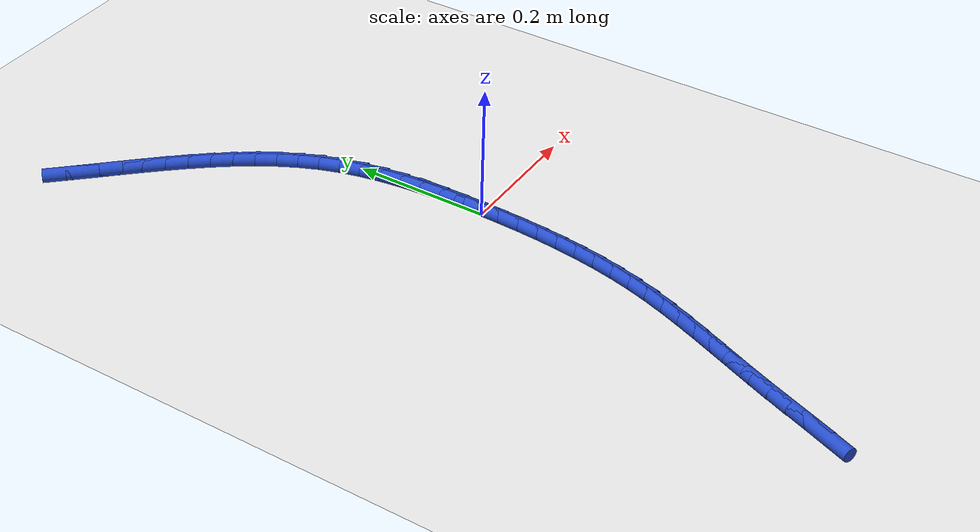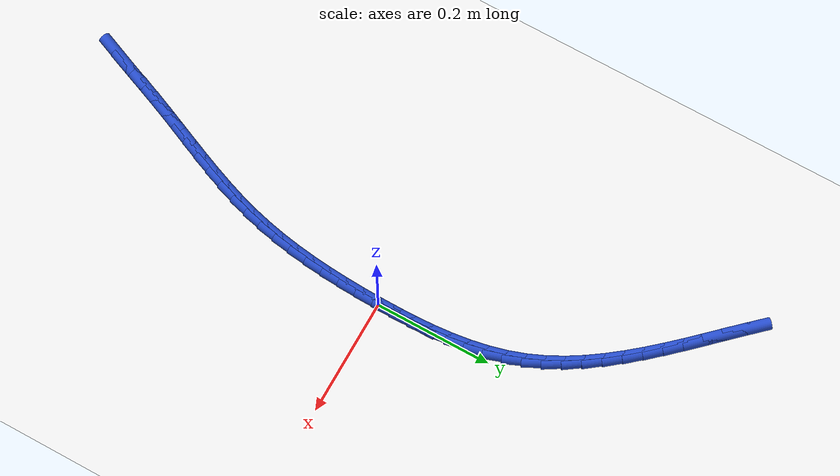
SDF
<sdf version="1.6">
 <world name="default">
  <model name="ground_plane">
   <static>1</static>
   <link name="link">
    <collision name="collision">
     <geometry><plane><normal>0 0 1</normal><size>100 100</size></plane></geometry>
     <surface><friction><ode><mu>100</mu><mu2>50</mu2></ode></friction></surface>
    </collision>
    <visual name="visual">
     <cast_shadows>0</cast_shadows>
     <geometry><plane><normal>0 0 1</normal><size>100 100</size></plane></geometry>
     <material>
      <script><uri>file://media/materials/scripts/gazebo.material</uri><name>Gazebo/WhiteGlow</name></script>
     </material>
    </visual>
   </link>
  </model>
  <model name="line">
   <link name="link_0">
    <pose>1.951563910473908e-18 -4.85722573273506e-17 0.01 0 1.57 1.5601422020148101</pose>
    <collision name="collision">
     <geometry><cylinder><radius>0.01</radius><length>0.08</length></cylinder></geometry>
    </collision>
    <visual name="visual">
     <material>
      <script><name>Gazebo/Blue</name><uri>file://media/materials/scripts/gazebo.material</uri></script>
     </material>
     <geometry><cylinder><radius>0.01</radius><length>0.08</length></cylinder></geometry>
    </visual>
   </link>
   <link name="link_1">
    <pose>0.0003457075524983117 0.032447007996455744 0.01 0 1.57 -1.557407941470897</pose>
    <collision name="collision">
     <geometry><cylinder><radius>0.01</radius><length>0.08</length></cylinder></geometry>
    </collision>
    <visual name="visual">
     <material>
      <script><name>Gazebo/Blue</name><uri>file://media/materials/scripts/gazebo.material</uri></script>
     </material>
     <geometry><cylinder><radius>0.01</radius><length>0.08</length></cylinder></geometry>
    </visual>
   </link>
   <link name="link_2">
    <pose>-8.86119410091231e-05 0.06488509012977318 0.01 0 1.57 -1.5258298096238987</pose>
    <collision name="collision">
     <geometry><cylinder><radius>0.01</radius><length>0.08</length></cylinder></geometry>
    </collision>
    <visual name="visual">
     <material>
      <script><name>Gazebo/Blue</name><uri>file://media/materials/scripts/gazebo.material</uri></script>
     </material>
     <geometry><cylinder><radius>0.01</radius><length>0.08</length></cylinder></geometry>
    </visual>
   </link>
   <link name="link_3">
    <pose>-0.0015413717403349356 0.09717090198525248 0.01 0 1.57 -1.486296652616927</pose>
    <collision name="collision">
     <geometry><cylinder><radius>0.01</radius><length>0.08</length></cylinder></geometry>
    </collision>
    <visual name="visual">
     <material>
      <script><name>Gazebo/Blue</name><uri>file://media/materials/scripts/gazebo.material</uri></script>
     </material>
     <geometry><cylinder><radius>0.01</radius><length>0.08</length></cylinder></geometry>
    </visual>
   </link>
   <link name="link_4">
    <pose>-0.004250985105291752 0.12916109914819376 0.01 0 1.57 -1.4383055679510994</pose>
    <collision name="collision">
     <geometry><cylinder><radius>0.01</radius><length>0.08</length></cylinder></geometry>
    </collision>
    <visual name="visual">
     <material>
      <script><name>Gazebo/Blue</name><uri>file://media/materials/scripts/gazebo.material</uri></script>
     </material>
     <geometry><cylinder><radius>0.01</radius><length>0.08</length></cylinder></geometry>
    </visual>
   </link>
   <link name="link_5">
    <pose>-0.008455865295692207 0.16071233720389716 0.01 0 1.57 -1.381337579361241</pose>
    <collision name="collision">
     <geometry><cylinder><radius>0.01</radius><length>0.08</length></cylinder></geometry>
    </collision>
    <visual name="visual">
     <material>
      <script><name>Gazebo/Blue</name><uri>file://media/materials/scripts/gazebo.material</uri></script>
     </material>
     <geometry><cylinder><radius>0.01</radius><length>0.08</length></cylinder></geometry>
    </visual>
   </link>
   <link name="link_6">
    <pose>-0.014394425571348925 0.19168127173766283 0.01 0 1.57 -1.3149608072979624</pose>
    <collision name="collision">
     <geometry><cylinder><radius>0.01</radius><length>0.08</length></cylinder></geometry>
    </collision>
    <visual name="visual">
     <material>
      <script><name>Gazebo/Blue</name><uri>file://media/materials/scripts/gazebo.material</uri></script>
     </material>
     <geometry><cylinder><radius>0.01</radius><length>0.08</length></cylinder></geometry>
    </visual>
   </link>
   <link name="link_7">
    <pose>-0.02230507919207454 0.221924558334791 0.01 0 1.57 -1.2389795612155956</pose>
    <collision name="collision">
     <geometry><cylinder><radius>0.01</radius><length>0.08</length></cylinder></geometry>
    </collision>
    <visual name="visual">
     <material>
      <script><name>Gazebo/Blue</name><uri>file://media/materials/scripts/gazebo.material</uri></script>
     </material>
     <geometry><cylinder><radius>0.01</radius><length>0.08</length></cylinder></geometry>
    </visual>
   </link>
   <link name="link_8">
    <pose>-0.0324261800472538 0.2512988819237568 0.01 0 1.57 -1.157377749378496</pose>
    <collision name="collision">
     <geometry><cylinder><radius>0.01</radius><length>0.08</length></cylinder></geometry>
    </collision>
    <visual name="visual">
     <material>
      <script><name>Gazebo/Blue</name><uri>file://media/materials/scripts/gazebo.material</uri></script>
     </material>
     <geometry><cylinder><radius>0.01</radius><length>0.08</length></cylinder></geometry>
    </visual>
   </link>
   <link name="link_9">
    <pose>-0.04489136149666769 0.2797126843925873 0.01 0 1.57 -1.0823882750565061</pose>
    <collision name="collision">
     <geometry><cylinder><radius>0.01</radius><length>0.08</length></cylinder></geometry>
    </collision>
    <visual name="visual">
     <material>
      <script><name>Gazebo/Blue</name><uri>file://media/materials/scripts/gazebo.material</uri></script>
     </material>
     <geometry><cylinder><radius>0.01</radius><length>0.08</length></cylinder></geometry>
    </visual>
   </link>
   <link name="link_10">
    <pose>-0.05951398409438635 0.30723269890909444 0.01 0 1.57 -1.0167722121956417</pose>
    <collision name="collision">
     <geometry><cylinder><radius>0.01</radius><length>0.08</length></cylinder></geometry>
    </collision>
    <visual name="visual">
     <material>
      <script><name>Gazebo/Blue</name><uri>file://media/materials/scripts/gazebo.material</uri></script>
     </material>
     <geometry><cylinder><radius>0.01</radius><length>0.08</length></cylinder></geometry>
    </visual>
   </link>
   <link name="link_11">
    <pose>-0.07604639247050443 0.33395581508435057 0.01 0 1.57 -0.9606285880004451</pose>
    <collision name="collision">
     <geometry><cylinder><radius>0.01</radius><length>0.08</length></cylinder></geometry>
    </collision>
    <visual name="visual">
     <material>
      <script><name>Gazebo/Blue</name><uri>file://media/materials/scripts/gazebo.material</uri></script>
     </material>
     <geometry><cylinder><radius>0.01</radius><length>0.08</length></cylinder></geometry>
    </visual>
   </link>
   <link name="link_12">
    <pose>-0.09424093125511661 0.3599789225294286 0.01 0 1.57 -0.913738444325812</pose>
    <collision name="collision">
     <geometry><cylinder><radius>0.01</radius><length>0.08</length></cylinder></geometry>
    </collision>
    <visual name="visual">
     <material>
      <script><name>Gazebo/Blue</name><uri>file://media/materials/scripts/gazebo.material</uri></script>
     </material>
     <geometry><cylinder><radius>0.01</radius><length>0.08</length></cylinder></geometry>
    </visual>
   </link>
   <link name="link_13">
    <pose>-0.11384994507831754 0.38539891085540084 0.01 0 1.57 -0.8757177984947657</pose>
    <collision name="collision">
     <geometry><cylinder><radius>0.01</radius><length>0.08</length></cylinder></geometry>
    </collision>
    <visual name="visual">
     <material>
      <script><name>Gazebo/Blue</name><uri>file://media/materials/scripts/gazebo.material</uri></script>
     </material>
     <geometry><cylinder><radius>0.01</radius><length>0.08</length></cylinder></geometry>
    </visual>
   </link>
   <link name="link_14">
    <pose>-0.1346257785702018 0.41031266967334 0.01 0 1.57 -0.8461341198908823</pose>
    <collision name="collision">
     <geometry><cylinder><radius>0.01</radius><length>0.08</length></cylinder></geometry>
    </collision>
    <visual name="visual">
     <material>
      <script><name>Gazebo/Blue</name><uri>file://media/materials/scripts/gazebo.material</uri></script>
     </material>
     <geometry><cylinder><radius>0.01</radius><length>0.08</length></cylinder></geometry>
    </visual>
   </link>
   <link name="link_15">
    <pose>-0.15632077636086408 0.43481708859431834 0.01 0 1.57 -0.8245860310999504</pose>
    <collision name="collision">
     <geometry><cylinder><radius>0.01</radius><length>0.08</length></cylinder></geometry>
    </collision>
    <visual name="visual">
     <material>
      <script><name>Gazebo/Blue</name><uri>file://media/materials/scripts/gazebo.material</uri></script>
     </material>
     <geometry><cylinder><radius>0.01</radius><length>0.08</length></cylinder></geometry>
    </visual>
   </link>
   <link name="link_16">
    <pose>-0.17868728308039913 0.4590090572294087 0.01 0 1.57 -0.8107536357878705</pose>
    <collision name="collision">
     <geometry><cylinder><radius>0.01</radius><length>0.08</length></cylinder></geometry>
    </collision>
    <visual name="visual">
     <material>
      <script><name>Gazebo/Blue</name><uri>file://media/materials/scripts/gazebo.material</uri></script>
     </material>
     <geometry><cylinder><radius>0.01</radius><length>0.08</length></cylinder></geometry>
    </visual>
   </link>
   <link name="link_17">
    <pose>-0.20147764335890142 0.4829854651896833 0.01 0 1.57 -0.8044282596533969</pose>
    <collision name="collision">
     <geometry><cylinder><radius>0.01</radius><length>0.08</length></cylinder></geometry>
    </collision>
    <visual name="visual">
     <material>
      <script><name>Gazebo/Blue</name><uri>file://media/materials/scripts/gazebo.material</uri></script>
     </material>
     <geometry><cylinder><radius>0.01</radius><length>0.08</length></cylinder></geometry>
    </visual>
   </link>
   <link name="link_18">
    <pose>-0.22444420182646577 0.5068432020862151 0.01 0 1.57 -0.8055288244147857</pose>
    <collision name="collision">
     <geometry><cylinder><radius>0.01</radius><length>0.08</length></cylinder></geometry>
    </collision>
    <visual name="visual">
     <material>
      <script><name>Gazebo/Blue</name><uri>file://media/materials/scripts/gazebo.material</uri></script>
     </material>
     <geometry><cylinder><radius>0.01</radius><length>0.08</length></cylinder></geometry>
    </visual>
   </link>
   <link name="link_19">
    <pose>-0.24733930311318658 0.5306791575300762 0.01 0 1.57 -0.8141095556093366</pose>
    <collision name="collision">
     <geometry><cylinder><radius>0.01</radius><length>0.08</length></cylinder></geometry>
    </collision>
    <visual name="visual">
     <material>
      <script><name>Gazebo/Blue</name><uri>file://media/materials/scripts/gazebo.material</uri></script>
     </material>
     <geometry><cylinder><radius>0.01</radius><length>0.08</length></cylinder></geometry>
    </visual>
   </link>
   <link name="link_231">
    <pose>-0.16286225556470377 -0.5783200771897631 0.01 0 1.57 1.1784569628600592</pose>
    <collision name="collision">
     <geometry><cylinder><radius>0.01</radius><length>0.08</length></cylinder></geometry>
    </collision>
    <visual name="visual">
     <material>
      <script><name>Gazebo/Blue</name><uri>file://media/materials/scripts/gazebo.material</uri></script>
     </material>
     <geometry><cylinder><radius>0.01</radius><length>0.08</length></cylinder></geometry>
    </visual>
   </link>
   <link name="link_232">
    <pose>-0.15033522292304197 -0.548046348111298 0.01 0 1.57 1.190196052197276</pose>
    <collision name="collision">
     <geometry><cylinder><radius>0.01</radius><length>0.08</length></cylinder></geometry>
    </collision>
    <visual name="visual">
     <material>
      <script><name>Gazebo/Blue</name><uri>file://media/materials/scripts/gazebo.material</uri></script>
     </material>
     <geometry><cylinder><radius>0.01</radius><length>0.08</length></cylinder></geometry>
    </visual>
   </link>
   <link name="link_233">
    <pose>-0.1381395776700763 -0.5175655352985078 0.01 0 1.57 1.18841678270736</pose>
    <collision name="collision">
     <geometry><cylinder><radius>0.01</radius><length>0.08</length></cylinder></geometry>
    </collision>
    <visual name="visual">
     <material>
      <script><name>Gazebo/Blue</name><uri>file://media/materials/scripts/gazebo.material</uri></script>
     </material>
     <geometry><cylinder><radius>0.01</radius><length>0.08</length></cylinder></geometry>
    </visual>
   </link>
   <link name="link_234">
    <pose>-0.12592494934510598 -0.4871940717737369 0.01 0 1.57 1.1749783767247737</pose>
    <collision name="collision">
     <geometry><cylinder><radius>0.01</radius><length>0.08</length></cylinder></geometry>
    </collision>
    <visual name="visual">
     <material>
      <script><name>Gazebo/Blue</name><uri>file://media/materials/scripts/gazebo.material</uri></script>
     </material>
     <geometry><cylinder><radius>0.01</radius><length>0.08</length></cylinder></geometry>
    </visual>
   </link>
   <link name="link_235">
    <pose>-0.11339476183056156 -0.45720838466049996 0.01 0 1.57 1.1635456268459354</pose>
    <collision name="collision">
     <geometry><cylinder><radius>0.01</radius><length>0.08</length></cylinder></geometry>
    </collision>
    <visual name="visual">
     <material>
      <script><name>Gazebo/Blue</name><uri>file://media/materials/scripts/gazebo.material</uri></script>
     </material>
     <geometry><cylinder><radius>0.01</radius><length>0.08</length></cylinder></geometry>
    </visual>
   </link>
   <link name="link_236">
    <pose>-0.10062581588336811 -0.42760722732337847 0.01 0 1.57 1.160154259975397</pose>
    <collision name="collision">
     <geometry><cylinder><radius>0.01</radius><length>0.08</length></cylinder></geometry>
    </collision>
    <visual name="visual">
     <material>
      <script><name>Gazebo/Blue</name><uri>file://media/materials/scripts/gazebo.material</uri></script>
     </material>
     <geometry><cylinder><radius>0.01</radius><length>0.08</length></cylinder></geometry>
    </visual>
   </link>
   <link name="link_237">
    <pose>-0.0878532402781116 -0.3982716073885011 0.01 0 1.57 1.1650158198915872</pose>
    <collision name="collision">
     <geometry><cylinder><radius>0.01</radius><length>0.08</length></cylinder></geometry>
    </collision>
    <visual name="visual">
     <material>
      <script><name>Gazebo/Blue</name><uri>file://media/materials/scripts/gazebo.material</uri></script>
     </material>
     <geometry><cylinder><radius>0.01</radius><length>0.08</length></cylinder></geometry>
    </visual>
   </link>
   <link name="link_238">
    <pose>-0.07531273647131437 -0.36908210658859913 0.01 0 1.57 1.1782991184132576</pose>
    <collision name="collision">
     <geometry><cylinder><radius>0.01</radius><length>0.08</length></cylinder></geometry>
    </collision>
    <visual name="visual">
     <material>
      <script><name>Gazebo/Blue</name><uri>file://media/materials/scripts/gazebo.material</uri></script>
     </material>
     <geometry><cylinder><radius>0.01</radius><length>0.08</length></cylinder></geometry>
    </visual>
   </link>
   <link name="link_239">
    <pose>-0.06324000591949858 -0.339919306656403 0.01 0 1.57 1.2001393169635373</pose>
    <collision name="collision">
     <geometry><cylinder><radius>0.01</radius><length>0.08</length></cylinder></geometry>
    </collision>
    <visual name="visual">
     <material>
      <script><name>Gazebo/Blue</name><uri>file://media/materials/scripts/gazebo.material</uri></script>
     </material>
     <geometry><cylinder><radius>0.01</radius><length>0.08</length></cylinder></geometry>
    </visual>
   </link>
   <link name="link_240">
    <pose>-0.051870750079186845 -0.3106637893246447 0.01 0 1.57 1.2306068021808565</pose>
    <collision name="collision">
     <geometry><cylinder><radius>0.01</radius><length>0.08</length></cylinder></geometry>
    </collision>
    <visual name="visual">
     <material>
      <script><name>Gazebo/Blue</name><uri>file://media/materials/scripts/gazebo.material</uri></script>
     </material>
     <geometry><cylinder><radius>0.01</radius><length>0.08</length></cylinder></geometry>
    </visual>
   </link>
   <link name="link_241">
    <pose>-0.04144067040690078 -0.2811961363260533 0.01 0 1.57 1.2696565644828355</pose>
    <collision name="collision">
     <geometry><cylinder><radius>0.01</radius><length>0.08</length></cylinder></geometry>
    </collision>
    <visual name="visual">
     <material>
      <script><name>Gazebo/Blue</name><uri>file://media/materials/scripts/gazebo.material</uri></script>
     </material>
     <geometry><cylinder><radius>0.01</radius><length>0.08</length></cylinder></geometry>
    </visual>
   </link>
   <link name="link_242">
    <pose>-0.032185468359162986 -0.2513969293933604 0.01 0 1.57 1.3155441639955405</pose>
    <collision name="collision">
     <geometry><cylinder><radius>0.01</radius><length>0.08</length></cylinder></geometry>
    </collision>
    <visual name="visual">
     <material>
      <script><name>Gazebo/Blue</name><uri>file://media/materials/scripts/gazebo.material</uri></script>
     </material>
     <geometry><cylinder><radius>0.01</radius><length>0.08</length></cylinder></geometry>
    </visual>
   </link>
   <link name="link_243">
    <pose>-0.02429713016517316 -0.22116693535103005 0.01 0 1.57 1.3600079955085909</pose>
    <collision name="collision">
     <geometry><cylinder><radius>0.01</radius><length>0.08</length></cylinder></geometry>
    </collision>
    <visual name="visual">
     <material>
      <script><name>Gazebo/Blue</name><uri>file://media/materials/scripts/gazebo.material</uri></script>
     </material>
     <geometry><cylinder><radius>0.01</radius><length>0.08</length></cylinder></geometry>
    </visual>
   </link>
   <link name="link_244">
    <pose>-0.01773818066774775 -0.19051287264306546 0.01 0 1.57 1.4003459771491065</pose>
    <collision name="collision">
     <geometry><cylinder><radius>0.01</radius><length>0.08</length></cylinder></geometry>
    </collision>
    <visual name="visual">
     <material>
      <script><name>Gazebo/Blue</name><uri>file://media/materials/scripts/gazebo.material</uri></script>
     </material>
     <geometry><cylinder><radius>0.01</radius><length>0.08</length></cylinder></geometry>
    </visual>
   </link>
   <link name="link_245">
    <pose>-0.012396117053663763 -0.1594761030222766 0.01 0 1.57 1.4365550095942</pose>
    <collision name="collision">
     <geometry><cylinder><radius>0.01</radius><length>0.08</length></cylinder></geometry>
    </collision>
    <visual name="visual">
     <material>
      <script><name>Gazebo/Blue</name><uri>file://media/materials/scripts/gazebo.material</uri></script>
     </material>
     <geometry><cylinder><radius>0.01</radius><length>0.08</length></cylinder></geometry>
    </visual>
   </link>
   <link name="link_246">
    <pose>-0.008158393973396476 -0.1280980078822072 0.01 0 1.57 1.4686865059001097</pose>
    <collision name="collision">
     <geometry><cylinder><radius>0.01</radius><length>0.08</length></cylinder></geometry>
    </collision>
    <visual name="visual">
     <material>
      <script><name>Gazebo/Blue</name><uri>file://media/materials/scripts/gazebo.material</uri></script>
     </material>
     <geometry><cylinder><radius>0.01</radius><length>0.08</length></cylinder></geometry>
    </visual>
   </link>
   <link name="link_247">
    <pose>-0.004912466077421173 -0.09641996861640104 0.01 0 1.57 1.4968260284898223</pose>
    <collision name="collision">
     <geometry><cylinder><radius>0.01</radius><length>0.08</length></cylinder></geometry>
    </collision>
    <visual name="visual">
     <material>
      <script><name>Gazebo/Blue</name><uri>file://media/materials/scripts/gazebo.material</uri></script>
     </material>
     <geometry><cylinder><radius>0.01</radius><length>0.08</length></cylinder></geometry>
    </visual>
   </link>
   <link name="link_248">
    <pose>-0.002545788016213137 -0.06448336661840197 0.01 0 1.57 1.5210772945679318</pose>
    <collision name="collision">
     <geometry><cylinder><radius>0.01</radius><length>0.08</length></cylinder></geometry>
    </collision>
    <visual name="visual">
     <material>
      <script><name>Gazebo/Blue</name><uri>file://media/materials/scripts/gazebo.material</uri></script>
     </material>
     <geometry><cylinder><radius>0.01</radius><length>0.08</length></cylinder></geometry>
    </visual>
   </link>
   <link name="link_249">
    <pose>-0.0009458144402476511 -0.0323295832817537 0.01 0 1.57 1.541549282789186</pose>
    <collision name="collision">
     <geometry><cylinder><radius>0.01</radius><length>0.08</length></cylinder></geometry>
    </collision>
    <visual name="visual">
     <material>
      <script><name>Gazebo/Blue</name><uri>file://media/materials/scripts/gazebo.material</uri></script>
     </material>
     <geometry><cylinder><radius>0.01</radius><length>0.08</length></cylinder></geometry>
    </visual>
   </link>
   <link name="link_250">
    <pose>1.951563910473908e-18 -1.1102230246251565e-16 0.01 0 1.57 1.5583462360275244</pose>
    <collision name="collision">
     <geometry><cylinder><radius>0.01</radius><length>0.08</length></cylinder></geometry>
    </collision>
    <visual name="visual">
     <material>
      <script><name>Gazebo/Blue</name><uri>file://media/materials/scripts/gazebo.material</uri></script>
     </material>
     <geometry><cylinder><radius>0.01</radius><length>0.08</length></cylinder></geometry>
    </visual>
   </link>
   <link name="link_251">
    <pose>0.00040420065405453727 0.03246400183331502 0.01 0 1.57 -1.570032504944134</pose>
    <collision name="collision">
     <geometry><cylinder><radius>0.01</radius><length>0.08</length></cylinder></geometry>
    </collision>
    <visual name="visual">
     <material>
      <script><name>Gazebo/Blue</name><uri>file://media/materials/scripts/gazebo.material</uri></script>
     </material>
     <geometry><cylinder><radius>0.01</radius><length>0.08</length></cylinder></geometry>
    </visual>
   </link>
   <link name="link_252">
    <pose>0.0003793328714406727 0.06502104082464788 0.01 0 1.57 1.5649623911470945</pose>
    <collision name="collision">
     <geometry><cylinder><radius>0.01</radius><length>0.08</length></cylinder></geometry>
    </collision>
    <visual name="visual">
     <material>
      <script><name>Gazebo/Blue</name><uri>file://media/materials/scripts/gazebo.material</uri></script>
     </material>
     <geometry><cylinder><radius>0.01</radius><length>0.08</length></cylinder></geometry>
    </visual>
   </link>
  </model>
 </world>
</sdf>
